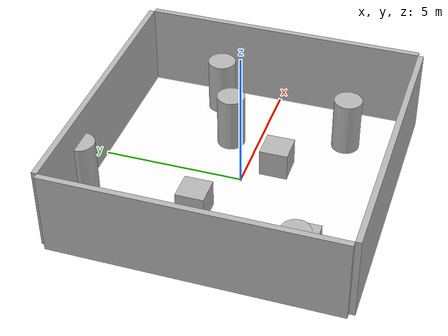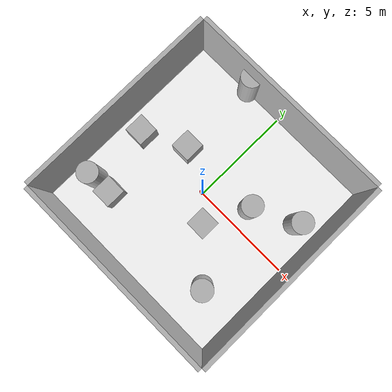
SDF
<sdf version="1.11">
 <world name="default">
  <plugin filename="gz-sim-user-commands-system" name="gz::sim::systems::UserCommands"/>
  <plugin filename="gz-sim-physics-system" name="gz::sim::systems::Physics"/>
  <plugin filename="gz-sim-sensors-system" name="gz::sim::systems::Sensors"/>
  <plugin filename="gz-sim-scene-broadcaster-system" name="gz::sim::systems::SceneBroadcaster"/>
  <plugin filename="gz-sim-imu-system" name="gz::sim::systems::Imu">
   <initial_orientation_as_reference>false</initial_orientation_as_reference>
  </plugin>
  <model name="store_layout">
   <include><uri>model://robot</uri><pose degrees="true">0 0 0.1 0 0 0</pose></include>
   <model name="obstacle-c">
    <static>true</static>
    <pose>-4 0 0.5 0 0 0</pose>
    <link name="link">
     <visual name="visual"><geometry><box><size>1 1 1</size></box></geometry></visual>
     <collision name="collision"><geometry><box><size>1 1 1</size></box></geometry></collision>
    </link>
   </model>
   <model name="obstacle-d">
    <static>true</static>
    <pose>-3 -3 0.5 0 0 0</pose>
    <link name="link">
     <visual name="visual"><geometry><box><size>1 1 1</size></box></geometry></visual>
     <collision name="collision"><geometry><box><size>1 1 1</size></box></geometry></collision>
    </link>
   </model>
   <model name="obstacle-a">
    <static>true</static>
    <pose>1 -1 0.5 0 0 0</pose>
    <link name="link">
     <visual name="visual"><geometry><box><size>1 1 1</size></box></geometry></visual>
     <collision name="collision"><geometry><box><size>1 1 1</size></box></geometry></collision>
    </link>
   </model>
   <model name="obstacle-b">
    <static>true</static>
    <pose>-2 1 0.5 0 0 0</pose>
    <link name="link">
     <visual name="visual"><geometry><box><size>1 1 1</size></box></geometry></visual>
     <collision name="collision"><geometry><box><size>1 1 1</size></box></geometry></collision>
    </link>
   </model>
   <model name="obstacle1">
    <static>true</static>
    <pose>4 2 1 0 0 0</pose>
    <link name="link">
     <visual name="visual">
      <geometry><cylinder><radius>0.5</radius><length>2</length></cylinder></geometry>
     </visual>
     <collision name="collision">
      <geometry><cylinder><radius>0.5</radius><length>2</length></cylinder></geometry>
     </collision>
    </link>
   </model>
   <model name="obstacle2">
    <static>true</static>
    <pose>-4 -3 1 0 0 0</pose>
    <link name="link">
     <visual name="visual">
      <geometry><cylinder><radius>0.5</radius><length>2</length></cylinder></geometry>
     </visual>
     <collision name="collision">
      <geometry><cylinder><radius>0.5</radius><length>2</length></cylinder></geometry>
     </collision>
    </link>
   </model>
   <model name="obstacle3">
    <static>true</static>
    <pose>3 -3 1 0 0 0</pose>
    <link name="link">
     <visual name="visual">
      <geometry><cylinder><radius>0.5</radius><length>2</length></cylinder></geometry>
     </visual>
     <collision name="collision">
      <geometry><cylinder><radius>0.5</radius><length>2</length></cylinder></geometry>
     </collision>
    </link>
   </model>
   <model name="obstacle4">
    <static>true</static>
    <pose>-2 5 1 0 0 0</pose>
    <link name="link">
     <visual name="visual">
      <geometry><cylinder><radius>0.5</radius><length>2</length></cylinder></geometry>
     </visual>
     <collision name="collision">
      <geometry><cylinder><radius>0.5</radius><length>2</length></cylinder></geometry>
     </collision>
    </link>
   </model>
   <model name="obstacle5">
    <static>true</static>
    <pose>2 1 1 0 0 0</pose>
    <link name="link">
     <visual name="visual">
      <geometry><cylinder><radius>0.5</radius><length>2</length></cylinder></geometry>
     </visual>
     <collision name="collision">
      <geometry><cylinder><radius>0.5</radius><length>2</length></cylinder></geometry>
     </collision>
    </link>
   </model>
   <model name="wall-left">
    <static>true</static>
    <pose>-5.1 0 1.5 0 0 0</pose>
    <link name="link">
     <visual name="visual"><geometry><box><size>0.2 10 3</size></box></geometry></visual>
     <collision name="collision"><geometry><box><size>0.2 10 3</size></box></geometry></collision>
    </link>
   </model>
   <model name="wall-right">
    <static>true</static>
    <pose>5.1 0 1.5 0 0 0</pose>
    <link name="link">
     <visual name="visual"><geometry><box><size>0.2 10 3</size></box></geometry></visual>
     <collision name="collision"><geometry><box><size>0.2 10 3</size></box></geometry></collision>
    </link>
   </model>
   <model name="wall-top">
    <static>true</static>
    <pose>0 5.1 1.5 0 0 0</pose>
    <link name="link">
     <visual name="visual"><geometry><box><size>10 0.2 3</size></box></geometry></visual>
     <collision name="collision"><geometry><box><size>10 0.2 3</size></box></geometry></collision>
    </link>
   </model>
   <model name="wall-bottom">
    <static>true</static>
    <pose>0 -5.1 1.5 0 0 0</pose>
    <link name="link">
     <visual name="visual"><geometry><box><size>10 0.2 3</size></box></geometry></visual>
     <collision name="collision"><geometry><box><size>10 0.2 3</size></box></geometry></collision>
    </link>
   </model>
   <model name="floor">
    <static>true</static>
    <link name="link">
     <collision name="collision">
      <geometry><plane><normal>0 0 1</normal><size>10 10</size></plane></geometry>
     </collision>
     <visual name="visual">
      <geometry><plane><normal>0 0 1</normal><size>10 10</size></plane></geometry>
      <material><ambient>1 1 1 1</ambient><diffuse>1 1 1 1</diffuse><specular>0.1 0.1 0.1 1</specular></material>
     </visual>
    </link>
   </model>
  </model>
  <plugin filename="librfidPlugin" name="RFIDManagerPlugin"/>
  <physics name="1ms" type="ignored">
   <max_step_size>0.001</max_step_size>
   <real_time_factor>1.0</real_time_factor>
  </physics>
  <light type="directional" name="sun">
   <pose>0 0 10 0 0 0</pose>
   <diffuse>0.8 0.8 0.8 1</diffuse>
   <specular>0.2 0.2 0.2 1</specular>
   <attenuation>
    <range>1000</range>
    <constant>0.9</constant>
    <linear>0.01</linear>
    <quadratic>0.001</quadratic>
   </attenuation>
   <direction>-0.5 0.1 -0.9</direction>
  </light>
 </world>
</sdf>

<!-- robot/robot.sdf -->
<sdf version='1.11'>
  <model name='robotmodel'>
    <link name='robot_base'>
      <pose>0 0 0 0 0 0</pose>
      <visual name='robot-base-v'>
        <!-- mesh -->
        <geometry>
          <mesh>
			  <uri>model://robot/meshes/robot_base.stl</uri>
            <scale>0.001 0.001 0.001</scale>
          </mesh>
        </geometry>
        <material>
          <diffuse>1 0 0 1</diffuse>
          <ambient>1 0 0 1</ambient>
          <!-- specular -->
        </material>
      </visual>
      <collision name='robot-base-c'>
        <geometry>
          <mesh>
			  <uri>model://robot/meshes/robot_base.stl</uri>
            <scale>0.001 0.001 0.001</scale>
          </mesh>
        </geometry>
      </collision>
      <inertial auto='true'>
        <mass>1000</mass>
      </inertial>
    </link>

		<link name='wheel-frontleft'>
      <pose degrees='true'>0.1 0.075 0 90 0 0</pose>
      <visual name='robot-frontleft-v'>
        <!-- mesh -->
        <geometry>
					<cylinder>
						<radius>0.02</radius>
						<length>0.02</length>
					</cylinder>
        </geometry>
        <material>
          <diffuse>1 0 0 1</diffuse>
          <ambient>1 0 0 1</ambient>
          <!-- specular -->
        </material>
      </visual>
      <collision name='robot-frontleft-c'>
        <geometry>
					<!-- NOTE Different geometries for collision and visual -->
					<sphere>
						<radius>0.02</radius>
					</sphere>
        </geometry>
      </collision>
      <inertial auto='true'>
        <mass>1</mass>
      </inertial>
	</link>

	<link name='wheel-backleft'>
      <pose degrees='true'>-0.1 0.075 0 -90 0 0</pose>
      <visual name='robot-backleft-v'>
        <!-- mesh -->
        <geometry>
					<cylinder>
						<radius>0.02</radius>
						<length>0.02</length>
					</cylinder>
        </geometry>
        <material>
          <diffuse>1 0 0 1</diffuse>
          <ambient>1 0 0 1</ambient>
          <!-- specular -->
        </material>
      </visual>
      <collision name='robot-backleft-c'>
        <geometry>
					<cylinder>
						<radius>0.02</radius>
						<length>0.02</length>
					</cylinder>
        </geometry>
      </collision>
      <inertial auto='true'>
        <mass>1</mass>
      </inertial>
	</link>

	<link name='wheel-frontright'>
      <pose degrees='true'>0.1 -0.075 0 90 0 0</pose>
      <visual name='robot-frontright-v'>
        <!-- mesh -->
        <geometry>
			<cylinder>
				<radius>0.02</radius>
				<length>0.02</length>
			</cylinder>
        </geometry>
        <material>
          <diffuse>1 0 0 1</diffuse>
          <ambient>1 0 0 1</ambient>
          <!-- specular -->
        </material>
      </visual>
      <collision name='robot-frontright-c'>
        <geometry>
					<!-- NOTE Different geometries for collision and visual -->
					<sphere>
						<radius>0.02</radius>
					</sphere>
        </geometry>
      </collision>
      <inertial auto='true'>
        <mass>1</mass>
      </inertial>
	</link>

	<link name='wheel-backright'>
      <pose degrees='true'>-0.1 -0.075 0 -90 0 0</pose>
      <visual name='robot-backright-v'>
        <!-- mesh -->
        <geometry>
			<cylinder>
				<radius>0.02</radius>
				<length>0.02</length>
			</cylinder>
        </geometry>
        <material>
          <diffuse>1 0 0 1</diffuse>
          <ambient>1 0 0 1</ambient>
          <!-- specular -->
        </material>
      </visual>
      <collision name='robot-backright-c'>
        <geometry>
			<cylinder>
				<radius>0.02</radius>
				<length>0.02</length>
			</cylinder>
        </geometry>
      </collision>
      <inertial auto='true'>
        <mass>1</mass>
      </inertial>
	</link>

    <joint name='frontleft' type='ball'>
      <pose>0 0 0 0 0 0</pose>
      <parent>robot_base</parent>
      <child>wheel-frontleft</child>
      <axis>
        <xyz>0 0 1</xyz>
      </axis>
    </joint>

    <joint name='frontright' type='ball'>
      <pose>0 0 0 0 0 0</pose>
      <parent>robot_base</parent>
      <child>wheel-frontright</child>
      <axis>
        <xyz>0 0 1</xyz>
      </axis>
    </joint>

    <joint name='backleft' type='revolute'>
      <pose>0 0 0 0 0 0</pose>
      <parent>robot_base</parent>
      <child>wheel-backleft</child>
      <axis>
        <xyz>0 0 1</xyz>
      </axis>
    </joint>

    <joint name='backright' type='revolute'>
      <pose>0 0 0 0 0 0</pose>
      <parent>robot_base</parent>
      <child>wheel-backright</child>
      <axis>
        <xyz>0 0 1</xyz>
      </axis>
    </joint>

	<link name='robot_lidar'>
		<pose>0 0 0.05 0 0 0</pose>
      <visual name='robot-lidar-v'>
        <!-- mesh -->
        <geometry>
			<cylinder>
				<radius>0.05 </radius>
				<length>0.02 </length>
			</cylinder>
        </geometry>
        <material>
          <diffuse>1 0 0 1</diffuse>
          <ambient>1 0 0 1</ambient>
          <!-- specular -->
        </material>
      </visual>
      <collision name='robot-base-c'>
        <geometry>
			<cylinder>
				<radius>0.05 </radius>
				<length>0.02 </length>
			</cylinder>
        </geometry>
      </collision>

		<sensor name='robot_lidar' type='gpu_lidar'>
			<topic>lidar</topic>
			<update_rate>5</update_rate>
			<always_on>true</always_on>
			<visualize>true</visualize>
			<ray>
				<scan>
					<horizontal>
						<samples>360</samples>
						<resolution>1.00</resolution>
						<min_angle>0.000</min_angle>
						<max_angle>6.280</max_angle>
					</horizontal>
				</scan>
				<range>
					<min>0.12</min>
					<max>10</max>
					<resolution>0.01500</resolution>
				</range>
        <noise>
          <type>gaussian</type>
          <mean>0.0</mean>
          <stddev>0.01</stddev>
        </noise>
			</ray>
		</sensor>
	</link>

    <joint name='lidarjoint' type='fixed'>
      <pose>0 0 0 0 0 0</pose>
      <parent>robot_base</parent>
      <child>robot_lidar</child>
      <axis>
        <xyz>1 0 0</xyz>
      </axis>
    </joint>

    <plugin filename="gz-sim-diff-drive-system" name="gz::sim::systems::DiffDrive">
        <left_joint>backleft</left_joint>
        <right_joint>backright</right_joint>
        <wheel_separation>0.15</wheel_separation>
        <wheel_radius>0.02</wheel_radius>

		<!-- Only change these to the frames if we want to use the wheel odom as a sole source -->
		<frame_id>odom</frame_id>
		<child_frame_id>base_link</child_frame_id>
		<tf_topic>/tf</tf_topic>

        <max_linear_acceleration>1</max_linear_acceleration>
        <min_linear_acceleration>-1</min_linear_acceleration>
        <max_angular_acceleration>2</max_angular_acceleration>
        <min_angular_acceleration>-2</min_angular_acceleration>
        <max_linear_velocity>0.5</max_linear_velocity>
        <min_linear_velocity>-0.5</min_linear_velocity>
        <max_angular_velocity>1</max_angular_velocity>
        <min_angular_velocity>-1</min_angular_velocity>
      </plugin>

	  <!-- camera link -->

	  <link name="camera_front">
		  <pose>0.2 0 0.1 0 0 0</pose>
		    <inertial>
			<mass>0.05</mass>
			<inertia>
			  <ixx>0.0001</ixx>
			  <iyy>0.0001</iyy>
			  <izz>0.0001</izz>
			  <ixy>0</ixy>
			  <ixz>0</ixz>
			  <iyz>0</iyz>
			</inertia>
		  </inertial>

		  <collision name="camera_collision">
			<geometry>
			  <box>
				<size>0.03 0.03 0.03</size>
			  </box>
			</geometry>
		  </collision>

		  <sensor name="left_camera" type="wideanglecamera">
			  <!-- -0.18rad is a 10degrees incline about y-axis-->
			  <pose>0 -0.05 1 0 -0.18 0</pose>
			<always_on>true</always_on>
			<update_rate>30</update_rate>
			<visualize>true</visualize>

		  <camera>
			<horizontal_fov>3.14159</horizontal_fov>
			<image>
			  <width>1024</width>
			  <height>1024</height>
			  <format>R8G8B8</format>
			</image>
			<clip>
			  <near>0.02</near>
			  <far>100.0</far>
			</clip>

			<lens>
				<type>custom</type>
			  <custom_function>
				<c1>1.05</c1>
				<c2>4</c2>
				<f>1.0</f>
				<fun>tan</fun> <!-- Approximates fisheye -->
			  </custom_function>
			  <scale_to_hfov>true</scale_to_hfov>
			  <cutoff_angle>3.14159</cutoff_angle>
			  <env_texture_size>1024</env_texture_size>
			</lens>
		  </camera>

	  </sensor>

		  <sensor name="right_camera" type="wideanglecamera">
			<pose>0 0.05 1 0 0.18 0</pose>
			<always_on>true</always_on>
			<update_rate>30</update_rate>
			<visualize>true</visualize>

		  <camera>
			<horizontal_fov>3.14159</horizontal_fov>
			<image>
			  <width>1024</width>
			  <height>1024</height>
			  <format>R8G8B8</format>
			</image>
			<clip>
			  <near>0.02</near>
			  <far>100.0</far>
			</clip>

			<lens>
				<type>custom</type>
			  <custom_function>
				<c1>1.05</c1>
				<c2>4</c2>
				<f>1.0</f>
				<fun>tan</fun> <!-- Approximates fisheye -->
			  </custom_function>
			  <scale_to_hfov>true</scale_to_hfov>
			  <cutoff_angle>3.14159</cutoff_angle>
			  <env_texture_size>1024</env_texture_size>
			</lens>
		  </camera>

		  </sensor>
	  </link>

	<link name="imu">
		<pose>0 0 0.1 0 0 0 </pose>
		<visual name="imu-v">
			<geometry>
				<box><size>0.02 0.02 0.02</size></box>
			</geometry>
		</visual>
		<collision name="imu-c">
			<geometry>
				<box><size>0.02 0.02 0.02</size></box>
			</geometry>
		</collision>

		<sensor name="imu-sensor" type="imu">
			<topic>imu</topic>
			<update_rate>100</update_rate>
			<always_on>true</always_on>
			<visualize>true</visualize>
			<imu>
        <angular_velocity>
          <x>
            <noise type="gaussian">
              <mean>0.0</mean>
              <stddev>2e-4</stddev>
              <bias_mean>0.0000075</bias_mean>
              <bias_stddev>0.0000008</bias_stddev>
            </noise>
          </x>
          <y>
            <noise type="gaussian">
              <mean>0.0</mean>
              <stddev>2e-4</stddev>
              <bias_mean>0.0000075</bias_mean>
              <bias_stddev>0.0000008</bias_stddev>
            </noise>
          </y>
          <z>
            <noise type="gaussian">
              <mean>0.0</mean>
              <stddev>2e-4</stddev>
              <bias_mean>0.0000075</bias_mean>
              <bias_stddev>0.0000008</bias_stddev>
            </noise>
          </z>
        </angular_velocity>
        <linear_acceleration>
          <x>
            <noise type="gaussian">
              <mean>0.0</mean>
              <stddev>1.7e-2</stddev>
              <bias_mean>0.1</bias_mean>
              <bias_stddev>0.001</bias_stddev>
            </noise>
          </x>
          <y>
            <noise type="gaussian">
              <mean>0.0</mean>
              <stddev>1.7e-2</stddev>
              <bias_mean>0.1</bias_mean>
              <bias_stddev>0.001</bias_stddev>
            </noise>
          </y>
          <z>
            <noise type="gaussian">
              <mean>0.0</mean>
              <stddev>1.7e-2</stddev>
              <bias_mean>0.1</bias_mean>
              <bias_stddev>0.001</bias_stddev>
            </noise>
          </z>
        </linear_acceleration>
      </imu>
		</sensor>
	</link>

    <joint name='imujoint' type='fixed'>
      <pose>0 0 0 0 0 0</pose>
      <parent>robot_base</parent>
      <child>imu</child>
      <axis>
        <xyz>1 0 0</xyz>
      </axis>
  </joint>

    <joint name='camerajoint' type='fixed'>
      <pose>0 0 0 0 0 0</pose>
      <parent>robot_base</parent>
      <child>camera_front</child>
      <axis>
        <xyz>1 0 0</xyz>
      </axis>
    </joint>

  </model>
</sdf>
